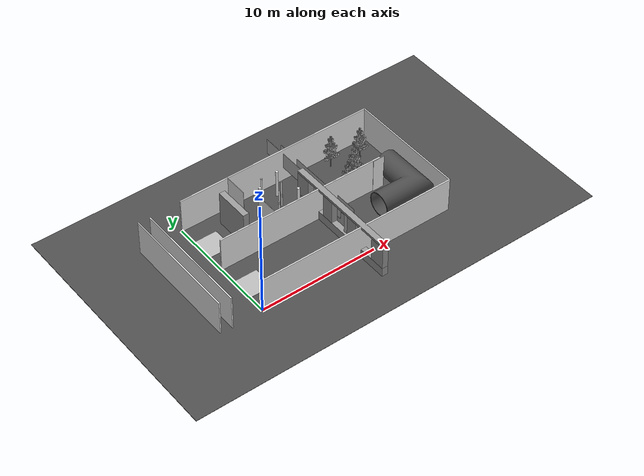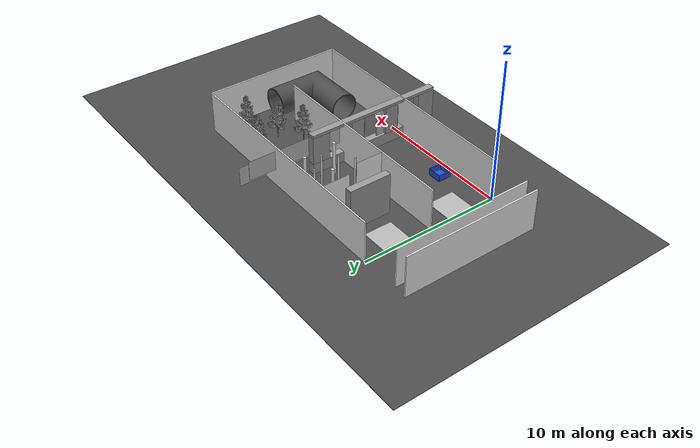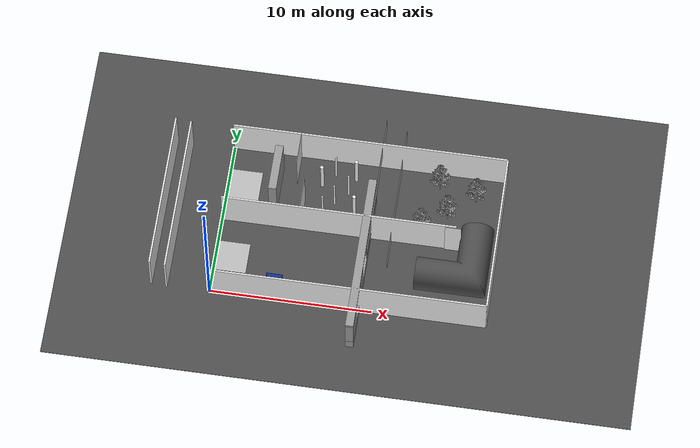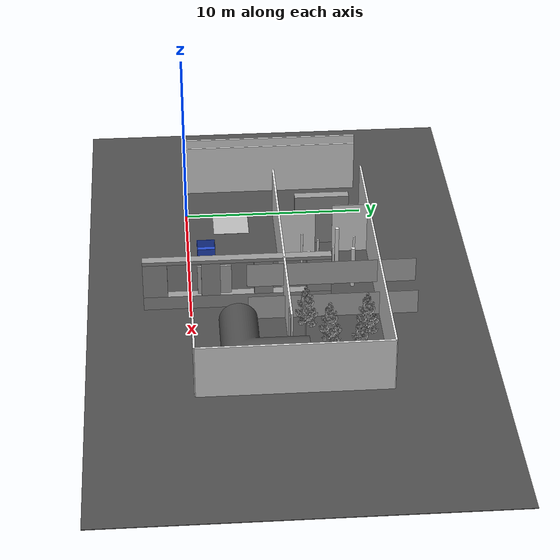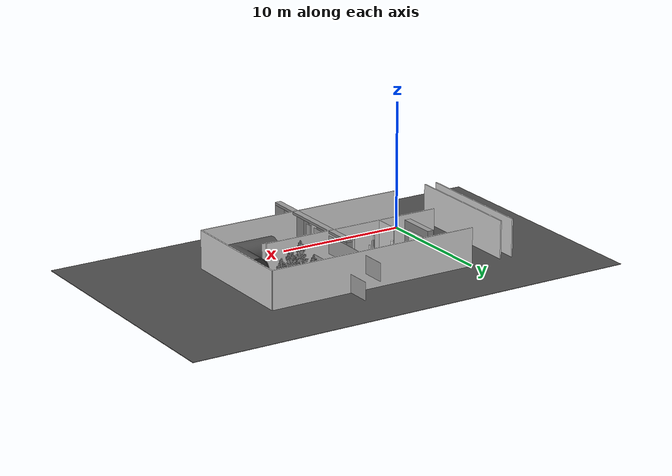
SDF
<?xml version="1.0" ?>
<sdf version="1.5">
  <world name="default">

    <gui fullscreen='0'>
      <camera name='user_camera'>
        <pose>-15.8 -3.2 24.8 0 0.7 0.4</pose>
      </camera>
    </gui>

    <scene>
      <grid>false</grid>
      <origin_visual>false</origin_visual>
    </scene>

    <!-- A global light source -->
    <include>
      <uri>model://sun</uri>
    </include>

    <include>
      <uri>model://AIGC2_ground</uri>
	  <pose> 8.5 5.0 0.0 0 0 0 </pose>
    </include>

    <include>
      <uri>model://AIGC2_start</uri>
	  <pose> 1.0 7.5 0.0 0 0 0 </pose>
    </include>

    <include>
      <uri>model://AIGC2_landing</uri>
	  <pose> 1.0 2.5 0.0 0 0 0 </pose>
    </include>

    <!--  WALL                                -->

    <include>
      <uri>model://AIGC2_wall_17m</uri>
      <name>AIGC2_wall_17m_1</name>
	  <pose> 8.5 10.0 0.0 0 0 0 </pose>
    </include>

    <include>
      <uri>model://AIGC2_wall_17m</uri>
      <name>AIGC2_wall_17m_2</name>
	  <pose> 8.5 0.0 0.0 0 0 0 </pose>
    </include>

    <include>
      <uri>model://AIGC2_wall_14m</uri>
      <name>AIGC2_wall_14m</name>
	  <pose> 7.25 5.0 0.0 0 0 0 </pose>
    </include>

    <include>
      <uri>model://AIGC2_wall_10m</uri>
      <name>AIGC2_wall_10m</name>
	  <pose> 17.0 5.0 0.0 0 0 -1.57079 </pose>
    </include>

    <include>
      <uri>model://AIGC2_wall_10m</uri>
      <name>AIGC2_wall_10m</name>
	  <pose> -3.6 5.0 0.0 0 0 -1.57079 </pose>
    </include>

    <!--  2. Wall Obstacle                    -->

    <include>
      <uri>model://AIGC2_wall_3m</uri>
      <name>AIGC2_wall_3m</name>
	  <pose> 3.0 7.5 0.0 0 0 -1.57079 </pose>
    </include>

    <include>
      <uri>model://AIGC2_wall_2m</uri>
      <name>AIGC2_wall_2m_1</name>
	  <pose> 4.2 9.0 0.0 0 0 -1.57079 </pose>
    </include>

    <include>
      <uri>model://AIGC2_wall_2m</uri>
      <name>AIGC2_wall_2m_2</name>
	  <pose> 4.85 6.0 0.0 0 0 -1.57079 </pose>
    </include>

    <!--  3. POLE OBSTACLE                    -->

    <include>
      <uri>model://AIGC2_pole_10cm</uri>
      <name>AIGC2_pole_10cm_1</name>
	  <pose> 6.5 8.98 0.0 0 0 0 </pose>
    </include>

    <include>
      <uri>model://AIGC2_pole_10cm</uri>
      <name>AIGC2_pole_10cm_2</name>
	  <pose> 7.46 7.77 0.0 0 0 0 </pose>
    </include>

    <include>
      <uri>model://AIGC2_pole_10cm</uri>
      <name>AIGC2_pole_10cm_3</name>
	  <pose> 6.69 7.0 0.0 0 0 0 </pose>
    </include>

    <include>
      <uri>model://AIGC2_pole_10cm</uri>
      <name>AIGC2_pole_10cm_4</name>
	  <pose> 6.07 6.18 0.0 0 0 0 </pose>
    </include>

    <include>
      <uri>model://AIGC2_pole_20cm</uri>
      <name>AIGC2_pole_20cm_1</name>
	  <pose> 7.8 8.8 0.0 0 0 0 </pose>
    </include>

    <include>
      <uri>model://AIGC2_pole_20cm</uri>
      <name>AIGC2_pole_20cm_2</name>
	  <pose> 5.76 8.13 0.0 0 0 0 </pose>
    </include>

    <include>
      <uri>model://AIGC2_pole_20cm</uri>
      <name>AIGC2_pole_20cm_3</name>
	  <pose> 8.0 6.4 0.0 0 0 0 </pose>
    </include>

    <!--  4. NET OBSTACLE                     -->

    <include>
      <uri>model://AIGC2_net</uri>
      <name>AIGCS_net_1</name>
	  <pose> 9.25 7.5 1.2 0 0 0.0 </pose>
    </include>

    <include>
      <uri>model://AIGC2_net</uri>
      <name>AIGCS_net_2</name>
	  <pose> 10.5 7.5 0.0 0 0 0.0 </pose>
    </include>

    <!--  5. TREE OBSTACLE                    -->

    <include>
      <uri>model://AIGC2_tree</uri>
      <name>AIGCS_tree_1</name>
	  <pose> 13.0 9.0 0.0 0 0 0.0 </pose>
    </include>

    <include>
      <uri>model://AIGC2_tree</uri>
      <name>AIGCS_tree_2</name>
	  <pose> 13.7 7.0 0.0 0 0 0.0 </pose>
    </include>

    <include>
      <uri>model://AIGC2_tree</uri>
      <name>AIGCS_tree_3</name>
	  <pose> 15.3 8.4 0.0 0 0 0.0 </pose>
    </include>

    <include>
      <uri>model://AIGC2_tree</uri>
      <name>AIGCS_tree_4</name>
	  <pose> 12.2 5.9 0.0 0 0 0.0 </pose>
    </include>

    <!--  6. CORRIDOR OBSTACLE                -->

    <include>
      <uri>model://AIGC2_tunnel</uri>
      <name>AIGC2_tunnel</name>
	  <pose> 15.75 6.4 1.35 0 0 3.141592 </pose>
    </include>

    <!--  7. WINDOW OBSTACLE                  -->

    <include>
      <uri>model://AIGC2_window</uri>
      <name>AIGC2_window</name>
	  <pose> 9.0 2.5 0.0 0 0 0.0 </pose>
    </include>

    <include>
      <uri>model://AIGC2_window_glass</uri>
      <name>AIGC2_glass</name>
	  <pose> 9.0 1.3 0.5 0 0 0.0 </pose>
    </include>

    <!--  8. BLUE BOX                         -->

    <include>
      <uri>model://AIGC2_box</uri>
      <name>AIGC2_box</name>
	  <pose> 3.8 1.0 0.0 0 0 0.0 </pose>
    </include>

    <!--  9. ETC                              -->

    <include>
      <uri>model://AIGC2_wall_1m</uri>
      <name>AIGC2_wall_1m</name>
	  <pose> 14.3 4.9 0.0 0 0 0.0 </pose>
    </include>

    <include>
      <uri>model://AIGC2_wall_10m</uri>
      <name>AIGC2_wall_10m_etc</name>
	  <pose> -2.64 4.9 0.0 0 0 -1.57079 </pose>
    </include>

    <physics name='default_physics' default='0' type='ode'>
      <gravity>0 0 -9.8066</gravity>
      <ode>
        <solver>
          <type>quick</type>
          <iters>10</iters>
          <sor>1.3</sor>
          <use_dynamic_moi_rescaling>0</use_dynamic_moi_rescaling>
        </solver>
        <constraints>
          <cfm>0</cfm>
          <erp>0.2</erp>
          <contact_max_correcting_vel>100</contact_max_correcting_vel>
          <contact_surface_layer>0.001</contact_surface_layer>
        </constraints>
      </ode>
      <max_step_size>0.004</max_step_size>
      <real_time_factor>1</real_time_factor>
      <real_time_update_rate>250</real_time_update_rate>
      <magnetic_field>6.0e-6 2.3e-5 -4.2e-5</magnetic_field>
    </physics>
    <gui fullscreen='0'>
      <camera name='user_camera'>
        <pose frame=''>-21.5641 -5.24295 22.3626 0 0.563642 -0.035802</pose>
        <view_controller>orbit</view_controller>
        <projection_type>perspective</projection_type>
      </camera>
    </gui>
  </world>
</sdf>

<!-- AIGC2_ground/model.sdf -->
<sdf version="1.5">
  <model name="AIGC2_ground">
    <static>true</static>
    <link name="link">
      <collision name="collision">
        <geometry>
          <box>
            <size>36 21 .04</size>
          </box>
        </geometry>
      </collision>
      <visual name="visual">
        <cast_shadows>false</cast_shadows>
        <geometry>
          <box>
            <size>36 21 .04</size>
          </box>
        </geometry>
        <material>
          <script>
            <uri>model://AIGC2_ground/materials/scripts</uri>
            <uri>model://AIGC2_ground/materials/textures</uri>
            <name>vrc/asphalt</name>
          </script>
        </material>
      </visual>
    </link>
  </model>
</sdf>

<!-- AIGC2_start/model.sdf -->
<sdf version="1.5">
  <model name="AIGC2_start">
    <static>true</static>
    <link name="link">
      <pose>0 0 0.0 0 0 0</pose>
      <collision name="collision">
        <geometry>
          <box>
            <size>2.0 2.0 0.05</size>
          </box>
        </geometry>
      </collision>
      <visual name="visual">
        <cast_shadows>false</cast_shadows>
        <geometry>
          <box>
            <size>2.0 2.0 0.05</size>
          </box>
        </geometry>
        <material>
          <script>
            <uri>model://AIGC2_start/materials/scripts</uri>
            <uri>model://AIGC2_start/materials/textures</uri>
            <name>vrc/start</name>
          </script>
        </material>
      </visual>
    </link>
  </model>
</sdf>

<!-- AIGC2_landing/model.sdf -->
<sdf version="1.5">
  <model name="AIGC2_landing">
    <static>true</static>
    <link name="link">
      <pose>0 0 0.0 0 0 0</pose>
      <collision name="collision">
        <geometry>
          <box>
            <size>2.0 2.0 0.05</size>
          </box>
        </geometry>
      </collision>
      <visual name="visual">
        <cast_shadows>false</cast_shadows>
        <geometry>
          <box>
            <size>2.0 2.0 0.05</size>
          </box>
        </geometry>
        <material>
          <script>
            <uri>model://AIGC2_landing/materials/scripts</uri>
            <uri>model://AIGC2_landing/materials/textures</uri>
            <name>vrc/landing</name>
          </script>
        </material>
      </visual>
    </link>
  </model>
</sdf>

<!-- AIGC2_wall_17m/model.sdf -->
<sdf version="1.5">
  <model name="AIGC2_wall_17m">
    <static>true</static>
    <link name="link">
      <pose>0 0 1.5 0 0 0</pose>
      <collision name="collision">
        <geometry>
          <box>
            <size>17.0 0.1 3.0</size>
          </box>
        </geometry>
      </collision>
      <visual name="visual">
        <cast_shadows>false</cast_shadows>
        <geometry>
          <box>
            <size>17.0 0.1 3.0</size>
          </box>
        </geometry>
        <material>
			<script>
				<name>Gazebo/White</name>
				<uri>file://media/materials/scripts/gazebo.material</uri>
			</script>
        </material>
      </visual>
    </link>
  </model>
</sdf>

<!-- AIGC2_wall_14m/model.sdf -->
<sdf version="1.5">
  <model name="AIGC2_wall_14m">
    <static>true</static>
    <link name="link">
      <pose>0 0 1.5 0 0 0</pose>
      <collision name="collision">
        <geometry>
          <box>
            <size>14.5 0.1 3.0</size>
          </box>
        </geometry>
      </collision>
      <visual name="visual">
        <cast_shadows>false</cast_shadows>
        <geometry>
          <box>
            <size>14.5 0.1 3.0</size>
          </box>
        </geometry>
        <material>
			<script>
				<name>Gazebo/White</name>
				<uri>file://media/materials/scripts/gazebo.material</uri>
			</script>
        </material>
      </visual>
    </link>
  </model>
</sdf>

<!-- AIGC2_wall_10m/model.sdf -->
<sdf version="1.5">
  <model name="AIGC2_wall_10m">
    <static>true</static>
    <link name="link">
      <pose>0 0 1.5 0 0 0</pose>
      <collision name="collision">
        <geometry>
          <box>
            <size>10.0 0.1 3.0</size>
          </box>
        </geometry>
      </collision>
      <visual name="visual">
        <cast_shadows>false</cast_shadows>
        <geometry>
          <box>
            <size>10.0 0.1 3.0</size>
          </box>
        </geometry>
        <material>
			<script>
				<name>Gazebo/White</name>
				<uri>file://media/materials/scripts/gazebo.material</uri>
			</script>
        </material>
      </visual>
    </link>
  </model>
</sdf>

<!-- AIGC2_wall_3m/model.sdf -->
<sdf version="1.5">
  <model name="AIGC2_wall_3m">
    <static>true</static>
    <link name="link">
      <pose>0 0 1.5 0 0 0</pose>
      <collision name="collision">
        <geometry>
          <box>
            <size>3.0 0.5 3.0</size>
          </box>
        </geometry>
      </collision>
      <visual name="visual">
        <cast_shadows>false</cast_shadows>
        <geometry>
          <box>
            <size>3.0 0.5 3.0</size>
          </box>
        </geometry>
        <material>
          <script>
            <uri>model://AIGC2_wall_3m/materials/scripts</uri>
            <uri>model://AIGC2_wall_3m/materials/textures</uri>
            <name>vrc/grey_wall</name>
          </script>
        </material>
      </visual>
    </link>
  </model>
</sdf>

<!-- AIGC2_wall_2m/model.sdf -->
<sdf version="1.5">
  <model name="AIGC2_wall_2m">
    <static>true</static>
    <link name="link">
      <pose>0 0 1.5 0 0 0</pose>
      <collision name="collision">
        <geometry>
          <box>
            <size>2.0 0.02 3.0</size>
          </box>
        </geometry>
      </collision>
      <visual name="visual">
        <cast_shadows>false</cast_shadows>
        <geometry>
          <box>
            <size>2.0 0.02 3.0</size>
          </box>
        </geometry>
        <material>
			<script>
				<name>Gazebo/White</name>
				<uri>file://media/materials/scripts/gazebo.material</uri>
			</script>
        </material>
      </visual>
    </link>
  </model>
</sdf>

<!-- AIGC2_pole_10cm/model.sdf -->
<sdf version="1.5">
  <model name="AIGC2_pole_10cm">
    <static>true</static>
    <link name="link">
      <pose>0 0 1.2 0 0 0</pose>
      <collision name="collision">
        <geometry>
            <cylinder>
              <radius>.057</radius>
              <length>2.4</length>
            </cylinder>
        </geometry>
      </collision>
      <visual name="visual">
        <cast_shadows>true</cast_shadows>
        <geometry>
            <cylinder>
              <radius>.057</radius>
              <length>2.4</length>
            </cylinder>
        </geometry>
        <material>
          <script>
            <name>Gazebo/White</name>
            <uri>file://media/materials/scripts/gazebo.material</uri>
          </script>
        </material>
      </visual>
    </link>
  </model>
</sdf>

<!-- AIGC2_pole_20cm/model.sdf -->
<sdf version="1.5">
  <model name="AIGC2_pole_20cm">
    <static>true</static>
    <link name="link">
      <pose>0 0 1.3 0 0 0</pose>
      <collision name="collision">
        <geometry>
            <cylinder>
              <radius>.108</radius>
              <length>2.6</length>
            </cylinder>
        </geometry>
      </collision>
      <visual name="visual">
        <cast_shadows>true</cast_shadows>
        <geometry>
            <cylinder>
              <radius>.108</radius>
              <length>2.4</length>
            </cylinder>
        </geometry>
        <material>
          <script>
            <name>Gazebo/White</name>
            <uri>file://media/materials/scripts/gazebo.material</uri>
          </script>
        </material>
      </visual>
    </link>
  </model>
</sdf>

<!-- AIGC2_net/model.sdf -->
<sdf version="1.5">
  <model name="AIGC2_net">
    <static>true</static>
    <link name="link">
      <pose>0 0 0.75 0 0 0</pose>
      <collision name="collision">
        <geometry>
          <box>
            <size>0.01 9.0 1.3</size>
          </box>
        </geometry>
      </collision>
      <visual name="visual">
        <cast_shadows>false</cast_shadows>
        <geometry>
          <box>
            <size>0.01 9.0 1.4</size>
          </box>
        </geometry>
        <material>
          <script>
            <uri>model://AIGC2_net/materials/scripts</uri>
            <uri>model://AIGC2_net/materials/textures</uri>
            <name>vrc/tennis_net</name>
          </script>
        </material>
      </visual>
    </link>
  </model>
</sdf>

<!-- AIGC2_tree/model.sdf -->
<sdf version="1.6">
  <model name="AIGC2_tree">
    <static>true</static>
    <link name="link">
      <pose>0 0 0 1.5707 0 0</pose>
      <collision name="collision">
        <geometry>
          <mesh>
		    <scale>4.5 6.0 4.5</scale>
            <uri>model://AIGC2_tree/meshes/Tree4.dae</uri>
          </mesh>
        </geometry>
      </collision>
      <visual name="visual">
        <!-- give it some transparency so the transparency in the PNGs is used -->
        <transparency>0.001</transparency>
        <geometry>
          <mesh>
		    <scale>4.5 6.0 4.5</scale>
            <uri>model://AIGC2_tree/meshes/Tree4.dae</uri>
          </mesh>
        </geometry>
      </visual>
    </link>
  </model>
</sdf>

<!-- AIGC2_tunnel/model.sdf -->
<sdf version="1.5">
  <model name="AIGC2_tunnel">
    <static>true</static>
	<link name='chassis1'>
		<collision name='collision1'>
			<geometry>
				<mesh>
				<scale>0.01 0.01 0.01</scale>
				<uri>model://AIGC2_tunnel/AIGC_TUNNEL.stl</uri></mesh>
			</geometry>
		</collision>

		<visual name='visual1'>
			<geometry>
				<mesh>
				<scale>0.01 0.01 0.01</scale>
				<uri>model://AIGC2_tunnel/AIGC_TUNNEL.stl</uri></mesh>
			</geometry>
		    <material>
		      <script>
		        <name>Gazebo/DarkGrey</name>
		        <uri>file://media/materials/scripts/gazebo.material</uri>
		      </script>
		    </material>
		</visual>
	</link>
  </model>
</sdf>

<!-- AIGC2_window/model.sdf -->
<sdf version="1.5">
  <model name="AIGC2_window">
    <static>true</static>
    <link name="link">
      <pose>0 0 0.4 0 0 0</pose>
      <collision name="collision">
        <geometry>
          <box>
            <size>0.5 10.0 0.8</size>
          </box>
        </geometry>
      </collision>
      <visual name="visual">
        <cast_shadows>false</cast_shadows>
        <geometry>
          <box>
            <size>0.5 10.0 0.8</size>
          </box>
        </geometry>
        <material>
          <script>
            <uri>model://AIGC2_window/materials/scripts</uri>
            <uri>model://AIGC2_window/materials/textures</uri>
            <name>vrc/grey_wall</name>
          </script>
        </material>
      </visual>
    </link>

    <link name="link1">
      <pose>0 0 2.9 0 0 0</pose>
      <collision name="collision">
        <geometry>
          <box>
            <size>0.5 10.0 0.2</size>
          </box>
        </geometry>
      </collision>
      <visual name="visual">
        <cast_shadows>false</cast_shadows>
        <geometry>
          <box>
            <size>0.5 10.0 0.2</size>
          </box>
        </geometry>
        <material>
          <script>
            <uri>model://AIGC2_window/materials/scripts</uri>
            <uri>model://AIGC2_window/materials/textures</uri>
            <name>vrc/grey_wall</name>
          </script>
        </material>
      </visual>
    </link>

    <link name="link2">
      <pose>0 1.4 1.8 0 0 0</pose>
      <collision name="collision">
        <geometry>
          <box>
            <size>0.5 1.0 2.0</size>
          </box>
        </geometry>
      </collision>
      <visual name="visual">
        <cast_shadows>false</cast_shadows>
        <geometry>
          <box>
            <size>0.5 1.0 2.0</size>
          </box>
        </geometry>
        <material>
          <script>
            <uri>model://AIGC2_window/materials/scripts</uri>
            <uri>model://AIGC2_window/materials/textures</uri>
            <name>vrc/grey_wall</name>
          </script>
        </material>
      </visual>
    </link>

    <link name="link3">
      <pose>0 -1.4 1.8 0 0 0</pose>
      <collision name="collision">
        <geometry>
          <box>
            <size>0.5 1.0 2.0</size>
          </box>
        </geometry>
      </collision>
      <visual name="visual">
        <cast_shadows>false</cast_shadows>
        <geometry>
          <box>
            <size>0.5 1.0 2.0</size>
          </box>
        </geometry>
        <material>
          <script>
            <uri>model://AIGC2_window/materials/scripts</uri>
            <uri>model://AIGC2_window/materials/textures</uri>
            <name>vrc/grey_wall</name>
          </script>
        </material>
      </visual>
    </link>

    <link name="link4">
      <pose>0 4.35 1.8 0 0 0</pose>
      <collision name="collision">
        <geometry>
          <box>
            <size>0.5 1.3 2.0</size>
          </box>
        </geometry>
      </collision>
      <visual name="visual">
        <cast_shadows>false</cast_shadows>
        <geometry>
          <box>
            <size>0.5 1.3 2.0</size>
          </box>
        </geometry>
        <material>
          <script>
            <uri>model://AIGC2_window/materials/scripts</uri>
            <uri>model://AIGC2_window/materials/textures</uri>
            <name>vrc/grey_wall</name>
          </script>
        </material>
      </visual>
    </link>

    <link name="link5">
      <pose>0 -4.35 1.8 0 0 0</pose>
      <collision name="collision">
        <geometry>
          <box>
            <size>0.5 1.3 2.0</size>
          </box>
        </geometry>
      </collision>
      <visual name="visual">
        <cast_shadows>false</cast_shadows>
        <geometry>
          <box>
            <size>0.5 1.3 2.0</size>
          </box>
        </geometry>
        <material>
          <script>
            <uri>model://AIGC2_window/materials/scripts</uri>
            <uri>model://AIGC2_window/materials/textures</uri>
            <name>vrc/grey_wall</name>
          </script>
        </material>
      </visual>
    </link>

  </model>
</sdf>

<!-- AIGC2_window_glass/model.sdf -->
<sdf version="1.5">
  <model name="AIGC2_window_glass">
    <static>true</static>
    <link name="link">
      <pose>0 0 1.0 0 0 0</pose>
      <collision name="collision">
        <geometry>
          <box>
            <size>0.1 1.8 2.0</size>
          </box>
        </geometry>
      </collision>
      <visual name="visual">
        <cast_shadows>false</cast_shadows>
        <geometry>
          <box>
            <size>0.1 1.8 2.0</size>
          </box>
        </geometry>
        <material>
          <script>
            <uri>model://AIGC2_window_glass/materials/scripts</uri>
            <uri>model://AIGC2_window_glass/materials/textures</uri>
            <name>vrc/window</name>
          </script>
        </material>
      </visual>
    </link>
  </model>
</sdf>

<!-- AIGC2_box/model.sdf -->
<sdf version="1.5">
  <model name="AIGC2_box">
    <static>true</static>
    <link name="link">
      <pose>0.0 0 0 0 0 0</pose>
      <collision name="collision">
        <geometry>
          <box>
            <size>1.0 1.0 0.1</size>
          </box>
        </geometry>
      </collision>
      <visual name="visual">
        <cast_shadows>false</cast_shadows>
        <geometry>
          <box>
            <size>1.0 1.0 0.1</size>
          </box>
        </geometry>
        <material>
			<script>
				<name>Gazebo/Blue</name>
				<uri>file://media/materials/scripts/gazebo.material</uri>
			</script>
        </material>
      </visual>
    </link>

    <link name="link1">
      <pose>0.0 0.49 0.25 0 0 0</pose>
      <collision name="collision">
        <geometry>
          <box>
            <size>1.0 0.02 0.5</size>
          </box>
        </geometry>
      </collision>
      <visual name="visual">
        <cast_shadows>false</cast_shadows>
        <geometry>
          <box>
            <size>1.0 0.02 0.5</size>
          </box>
        </geometry>
        <material>
			<script>
				<name>Gazebo/Blue</name>
				<uri>file://media/materials/scripts/gazebo.material</uri>
			</script>
        </material>
      </visual>
    </link>

    <link name="link2">
      <pose>0.0 -0.49 0.25 0 0 0</pose>
      <collision name="collision">
        <geometry>
          <box>
            <size>1.0 0.02 0.5</size>
          </box>
        </geometry>
      </collision>
      <visual name="visual">
        <cast_shadows>false</cast_shadows>
        <geometry>
          <box>
            <size>1.0 0.02 0.5</size>
          </box>
        </geometry>
        <material>
			<script>
				<name>Gazebo/Blue</name>
				<uri>file://media/materials/scripts/gazebo.material</uri>
			</script>
        </material>
      </visual>
    </link>

    <link name="link3">
      <pose>0.49 0.0 0.25 0 0 0</pose>
      <collision name="collision">
        <geometry>
          <box>
            <size>0.02 1.0 0.5</size>
          </box>
        </geometry>
      </collision>
      <visual name="visual">
        <cast_shadows>false</cast_shadows>
        <geometry>
          <box>
            <size>0.02 1.0 0.5</size>
          </box>
        </geometry>
        <material>
			<script>
				<name>Gazebo/Blue</name>
				<uri>file://media/materials/scripts/gazebo.material</uri>
			</script>
        </material>
      </visual>
    </link>

    <link name="link4">
      <pose>-0.49 0.0 0.25 0 0 0</pose>
      <collision name="collision">
        <geometry>
          <box>
            <size>0.02 1.0 0.5</size>
          </box>
        </geometry>
      </collision>
      <visual name="visual">
        <cast_shadows>false</cast_shadows>
        <geometry>
          <box>
            <size>0.02 1.0 0.5</size>
          </box>
        </geometry>
        <material>
			<script>
				<name>Gazebo/Blue</name>
				<uri>file://media/materials/scripts/gazebo.material</uri>
			</script>
        </material>
      </visual>
    </link>

  </model>
</sdf>

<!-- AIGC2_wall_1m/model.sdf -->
<sdf version="1.5">
  <model name="AIGC2_wall_1m">
    <static>true</static>
    <link name="link">
      <pose>0 0 1.5 0 0 0</pose>
      <collision name="collision">
        <geometry>
          <box>
            <size>1.0 0.02 3.0</size>
          </box>
        </geometry>
      </collision>
      <visual name="visual">
        <cast_shadows>false</cast_shadows>
        <geometry>
          <box>
            <size>1.0 0.02 3.0</size>
          </box>
        </geometry>
        <material>
			<script>
				<name>Gazebo/White</name>
				<uri>file://media/materials/scripts/gazebo.material</uri>
			</script>
        </material>
      </visual>
    </link>
  </model>
</sdf>
